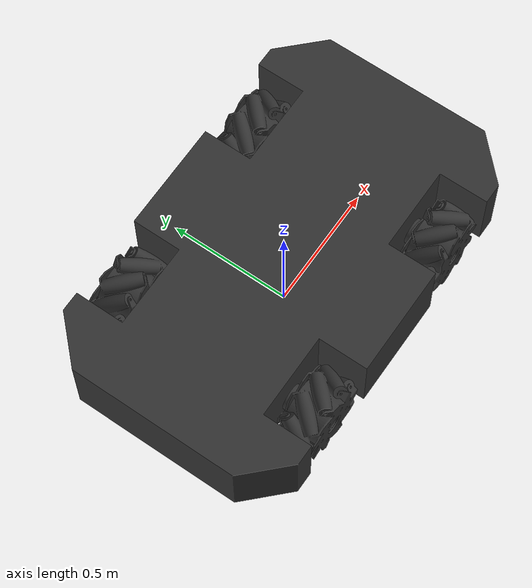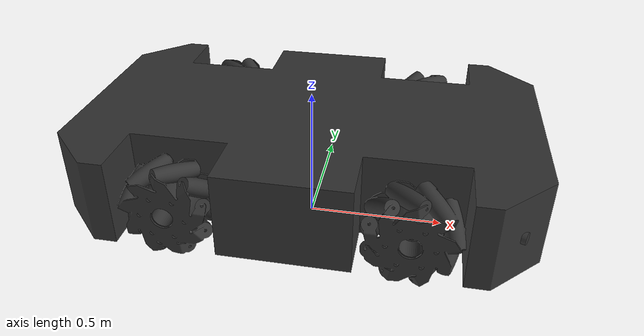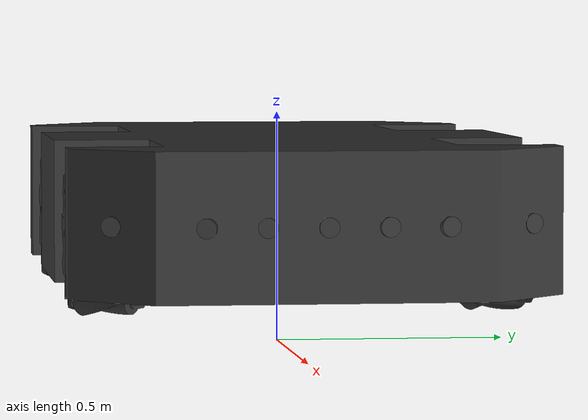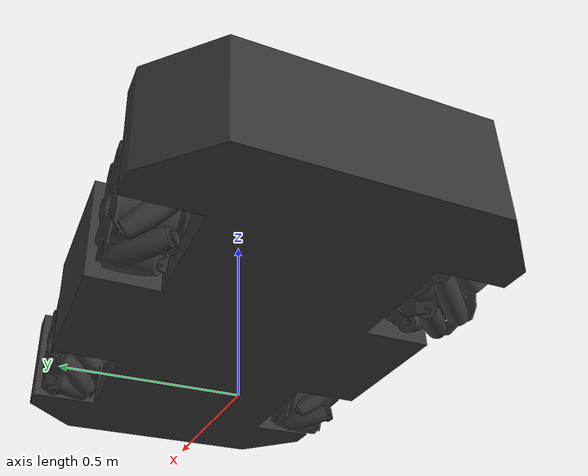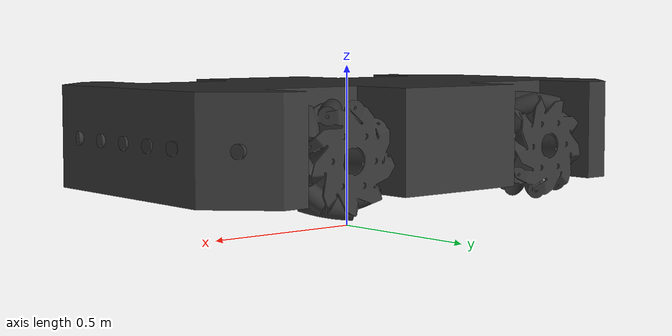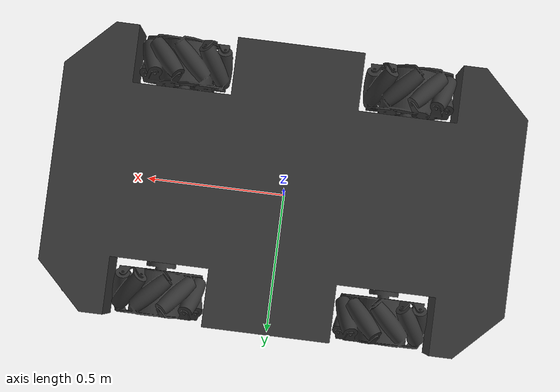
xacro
<?xml version="1.0"?>
<robot name="sonic" xmlns:xacro="http://ros.org/wiki/xacro">

  <xacro:include filename="$(find sonic_description)/urdf/materials.xacro" />
  <xacro:include filename="$(find sonic_description)/urdf/omniwheel.xacro" />
  <xacro:include filename="$(find sonic_description)/urdf/sonic.gazebo.xacro" />
  <xacro:include filename="$(find sonic_description)/urdf/sonar_sensor.xacro" />

  <!-- ARGUMENTS -->
  <xacro:arg name="spawn" default="0.0 0.0 0.3" />

  <!-- CONSTANTS -->
  <xacro:property name="PI" value="3.1415926535897931" />
  <xacro:property name="body_length" value="1.6" />
  <xacro:property name="body_width" value="1" />
  <xacro:property name="body_height" value="0.3" />
  <xacro:property name="wheel_radius" value="0.16" />
  <xacro:property name="wheel_width" value="${0.505/0.5*wheel_radius}" />

  <!-- BASE -->
  <link name="base_footprint"></link>

  <joint name="base_link_joint" type="fixed">
    <origin xyz="$(arg spawn)" rpy="0 0 0" />
    <parent link="base_footprint"/>
    <child link="base_link" />
  </joint>

  <link name="base_link">
    <visual>
      <origin xyz="0 0 0" rpy="0 0 0" />
      <geometry>
        <mesh filename="package://sonic_description/meshes/sonic_base.stl" scale="0.1 0.1 0.1"/>
      </geometry>
      <material name="dark_grey" />
    </visual>
    <collision>
      <origin xyz="0 0 0"/>
      <geometry>
        <mesh filename="package://sonic_description/meshes/sonic_base.stl" scale="0.1 0.1 0.1"/>
      </geometry>
    </collision>
    <inertial>
      <!-- Inertia from CAD model, filled box assumption -->
      <origin xyz="0 0 0" rpy="0 0 0"/>
      <mass value="25"/>
      <inertia
        ixx="2.0" ixy="0" ixz="0"
        iyy="2.0" iyz="0"
        izz="2.0"/>
    </inertial>
  </link>

  <!-- WHEELS -->
  <xacro:meccanum_wheel name="upper_left_wheel" parent="base_link"
  origin="${[(body_length/2-body_length*0.254), (body_width/2-0.2), -0.04]}" wheel_type="left"/>
  <xacro:meccanum_wheel name="upper_right_wheel" parent="base_link"
  origin="${[(body_length/2-body_length*0.254), -(body_width/2-0.2), -0.04]}" wheel_type="right"/>
  <xacro:meccanum_wheel name="lower_left_wheel" parent="base_link"
  origin="${[-(body_length/2-body_length*0.254), (body_width/2-0.2), -0.04]}" wheel_type="right"/>
  <xacro:meccanum_wheel name="lower_right_wheel" parent="base_link"
  origin="${[-(body_length/2-body_length*0.254), -(body_width/2-0.2), -0.04]}" wheel_type="left"/>

  <!--DEV ALG CONFIG-->
  <!-- SENSORS FRONT (id=FXX) -->

  <!-- SENSORS REAR(id=RXX) -->

  <!-- SENSORS CHEEK (id=CXX) -->
  <!--END DEV ALG CONFIG-->

  <!--Focal Point EXPERIMENT CONFIG-->
  <xacro:property name="max_angle" value="0.39331706" />  <!--arctan(300/(723-fx)) FINF::0.0 F0::0.39331706 F200::0.52079186  F100:0.4487716 F300::0.61688702-->

  <!-- SENSORS CHEEK (id=CXX) -->
  <xacro:sonar_sensor id="C51" parent="base_link"
  origin="${[body_length/2-0.077, 0.42, 0]}" rpy="0 0 ${max_angle}" fov="30"/>
  <xacro:sonar_sensor id="C49" parent="base_link"
  origin="${[body_length/2-0.077, -0.42, 0]}" rpy="0 0 ${-max_angle}" fov="30"/>

  <!-- SENSORS FRONT (id=FXX) -->
  <xacro:sonar_sensor id="F48" parent="base_link"
  origin="${[body_length/2, 0.24, 0]}" rpy="0 0 ${max_angle-1*2*max_angle/6.0}" fov="30"/>
  <xacro:sonar_sensor id="F49" parent="base_link"
  origin="${[body_length/2, 0.12, 0]}" rpy="0 0 ${max_angle-2*2*max_angle/6.0}" fov="30"/>
  <xacro:sonar_sensor id="F50" parent="base_link"
  origin="${[body_length/2, 0, 0]}" rpy="0 0 0" fov="30"/>
  <xacro:sonar_sensor id="F51" parent="base_link"
  origin="${[body_length/2, -0.12, 0]}" rpy="0 0 ${max_angle-4*2*max_angle/6.0}" fov="30"/>
  <xacro:sonar_sensor id="F52" parent="base_link"
  origin="${[body_length/2, -0.24, 0]}" rpy="0 0 ${max_angle-5*2*max_angle/6.0}" fov="30"/>
  <!--Focal Point END EXPERIMENT CONFIG-->

</robot>

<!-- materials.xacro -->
<robot xmlns:xacro="http://ros.org/wiki/xacro">
    <material name="yellow"><color rgba="0.8 0.8 0.0 1.0" /></material>
    <material name="black"><color rgba="0.15 0.15 0.15 1.0" /></material>
    <material name="dark_grey"><color rgba="0.2 0.2 0.2 1.0" /></material>
    <material name="light_grey"><color rgba="0.4 0.4 0.4 1.0" /></material>
</robot>

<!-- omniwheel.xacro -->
<robot xmlns:xacro="http://ros.org/wiki/xacro">
    <!-- MECCANUM WHEEL -->
    <xacro:macro name="meccanum_wheel" params="name parent origin wheel_type">

    <xacro:property name="sign_direction" value="${-origin[1]/sqrt(origin[1]*origin[1])}" />
    <xacro:property name="shaft_scale" value="${0.001*wheel_radius/0.05 - 0.001} ${0.001*wheel_radius/0.05 - 0.001} ${0.001*wheel_radius/0.05 - 0.001}" />
    <xacro:property name="wheel_scale" value="${0.001*wheel_radius/0.05} ${0.001*wheel_radius/0.05} ${0.001*wheel_radius/0.05}" />

    <joint name="${name}_shaft_joint" type="fixed">
        <origin xyz="${origin[0]} ${origin[1]} ${origin[2]}" rpy="${sign_direction*PI/2} 0 0" />
        <parent link="${parent}"/>
        <child link="${name}_shaft" />
    </joint>

    <link name="${name}_shaft">
        <visual>
            <origin xyz="0 0 0" rpy="0 0 0"/>
            <geometry>
                <mesh filename="package://sonic_description/meshes/wheel_shaft.dae" scale="${shaft_scale}"/>
            </geometry>
            <material name="dark_grey" />
        </visual>

        <collision>
            <origin xyz="0 0 0" rpy="0 0 0"/>
            <geometry>
                <mesh filename="package://sonic_description/meshes/wheel_shaft.dae" scale="${shaft_scale}"/>
            </geometry>
        </collision>

        <inertial>
            <origin xyz="0 0 0" rpy="0 0 0"/>
            <mass value="0.4"/>
            <inertia
                ixx="1.0" ixy="0.0" ixz="0.0"
                iyy="1.0" iyz="0.0"
                izz="1.0"/>
        </inertial>
    </link>

    <joint name="${name}_joint" type="fixed">
        <origin xyz="0 0 ${0.12*wheel_radius/0.18}" rpy="0 0 0" />
        <parent link="${name}_shaft"/>
        <child link="${name}" />
        <axis xyz="0 1 0"/>
    </joint>

    <link name="${name}">
        <visual>
            <origin xyz="0 0 0" rpy="0 0 0" />
            <geometry>
                <mesh filename="package://sonic_description/meshes/mecanum_wheel_${wheel_type}.dae" scale="${wheel_scale}"/>
            </geometry>
            <material name="dark_grey" />
        </visual>

        <collision>
            <origin xyz="0 0 0" rpy="0 0 0"/>
            <geometry>
                <cylinder radius="${wheel_radius}" length="${wheel_width}"/>
            </geometry>
        </collision>

        <inertial>
            <origin xyz="0 0 0" rpy="0 0 0"/>
            <mass value="0.5"/>
            <inertia
                ixx="1.0" ixy="0" ixz="0"
                iyy="1.0" iyz="0"
                izz="1.0"/>
        </inertial>
    </link>

    </xacro:macro>
</robot>

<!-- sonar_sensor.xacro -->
<robot xmlns:xacro="http://ros.org/wiki/xacro">
    <!-- MECCANUM WHEEL -->
    <xacro:macro name="sonar_sensor" params="id parent origin rpy fov">

    <!-- ULTRASONIC SENSORS -->
    <joint name="sensor_joint_${id}" type="fixed">
        <origin xyz="${origin[0]} ${origin[1]} ${origin[2]}" rpy="${rpy}" />
        <parent link="${parent}"/>
        <child link="uss_link_${id}" />
    </joint>

    <link name="uss_link_${id}">
        <visual>
        <origin xyz="0 0 0" rpy="0 ${PI/2} 0" />
        <geometry>
            <cylinder radius="0.02" length="0.015"/>
        </geometry>
        <material name="dark_grey" />
        </visual>
        <collision>
        <origin xyz="0 0 0" rpy="0 ${PI/2} 0"/>
        <geometry>
            <cylinder radius="0.02" length="0.015"/>
        </geometry>
        </collision>
        <inertial>
        <!-- Inertia from CAD model, filled box assumption -->
        <origin xyz="0 0 0" rpy="0 0 0"/>
        <mass value="0.05"/>
        <inertia
            ixx="0.001" ixy="0" ixz="0"
            iyy="0.001" iyz="0"
            izz="0.001"/>
        </inertial>
    </link>

    <!-- USS Plugin -->
    <gazebo reference="uss_link_${id}">
        <sensor type="lidar" name="range_sensor_${id}">
        <visualize>true</visualize>
        <ray>
            <scan>
            <horizontal>
                <samples>30</samples>
                <resolution>1</resolution>
                <min_angle>${-(fov/2)/180*PI}</min_angle>
                <max_angle>${(fov/2)/180*PI}</max_angle>
            </horizontal>
            <vertical>
                <samples>15</samples>
                <resolution>1</resolution>
                <min_angle>-0.04</min_angle>
                <max_angle>0.04</max_angle>
            </vertical>
            </scan>
            <range>
                <min>0.15</min>
                <max>4.1</max>
                <resolution>0.01</resolution>
            </range>
            <!-- Using gazebo's noise instead of plugin's -->
            <noise>
                <type>gaussian</type>
                <mean>0.0</mean>
                <stddev>0.01</stddev>
            </noise>
        </ray>
        <!-- Using gazebo's update rate instead of plugin's -->
        <update_rate>10</update_rate>
        <plugin name="range_sensor_${id}" filename="libgazebo_ros_ray_sensor.so">
            <!-- Change namespace and output topic so published topic is /sonic/uss_id -->
            <ros>
            <namespace>/sonic</namespace>
            <remapping>~/out:=uss_${id}</remapping>
            </ros>
            <!-- Set output to sensor_msgs/Range to get same output type as gazebo_ros_range -->
            <output_type>sensor_msgs/Range</output_type>
            <radiation_type>ultrasound</radiation_type>
            <frame_name>uss_link_${id}</frame_name>
        </plugin>
        </sensor>

        <!--Ground Truth Lidar for Free Space comparison-->
        <sensor type="lidar" name="gt_lidar_${id}">
        <visualize>False</visualize>
        <ray>
            <scan>
            <horizontal>
                <samples>30</samples>
                <resolution>1</resolution>
                <min_angle>${-(fov/2)/180*PI}</min_angle>
                <max_angle>${(fov/2)/180*PI}</max_angle>
            </horizontal>
            <vertical>
                <samples>15</samples>
                <resolution>1</resolution>
                <min_angle>-0.04</min_angle>
                <max_angle>0.04</max_angle>
            </vertical>
            </scan>
            <range>
                <min>0.15</min>
                <max>4.1</max>
                <resolution>0.01</resolution>
            </range>
            <!-- Using gazebo's noise instead of plugin's -->
            <noise>
                <type>gaussian</type>
                <mean>0.0</mean>
                <stddev>0.0</stddev>
            </noise>
        </ray>
        <!-- Using gazebo's update rate instead of plugin's -->
        <update_rate>10</update_rate>
        <plugin name="gt_lidar_${id}" filename="libgazebo_ros_ray_sensor.so">
            <!-- Change namespace and output topic so published topic is /sonic/uss_id -->
            <ros>
            <namespace>/sonic</namespace>
            <remapping>~/out:=gt_lidar_${id}</remapping>
            </ros>
            <!-- Set output to sensor_msgs/Range to get same output type as gazebo_ros_range -->
            <output_type>sensor_msgs/LaserScan</output_type>
            <frame_name>uss_link_${id}</frame_name>
        </plugin>
        </sensor>
    </gazebo>

    </xacro:macro>
</robot>
